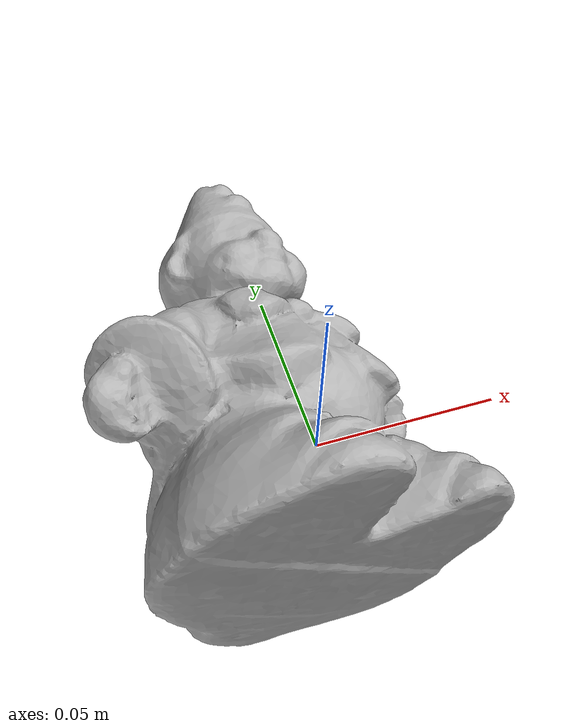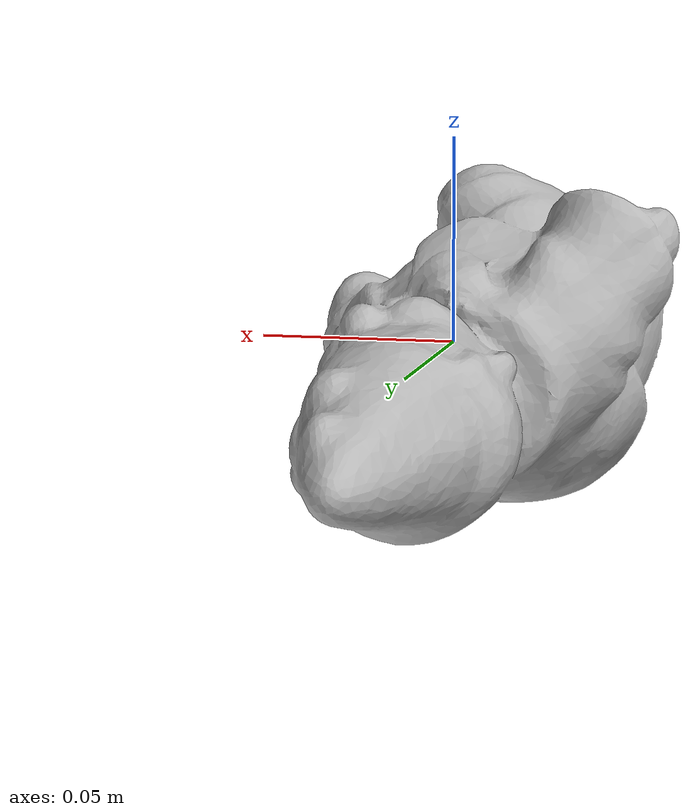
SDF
<?xml version='1.0'?>
<sdf version="1.4">
  <model name="Clown">
    <static>false</static>
    <link name="link">
      <inertial>
        <pose>-0.007592961018135043 0.014333206680027683 -0.0032316098226178973 -1.5273444262788245 0.8981097916834746 -3.132324674307328</pose>
        <mass>0.04956687445534706</mass>
        <inertia>
          <ixx>7.30879988150165e-05</ixx>
          <ixy>-2.571281014791791e-21</ixy>
          <ixz>-2.026202057943835e-20</ixz>
          <iyy>6.251434197027646e-05</iyy>
          <iyz>-1.6709411350221962e-20</iyz>
          <izz>4.0283100797325036e-05</izz>
        </inertia>
      </inertial>
      <collision name="collision">
        <geometry>
          <mesh>
            <!-- Use a downsampled mesh for collisions -->
            <uri>model:///Clown/Clown_250_collision.obj</uri>
	        </mesh>
        </geometry>
        <surface>
      </surface>
      </collision>
      <visual name="visual">
        <geometry>
          <mesh>
            <uri>model:///Clown/Clown_25k_tex.obj</uri>
	        </mesh>
        </geometry>
        <material>
          <script>
            <uri>model:///Clown/Clown.material</uri>
            <name>Clown</name>
          </script>
        </material>
      </visual>
    </link>
  </model>
</sdf>
